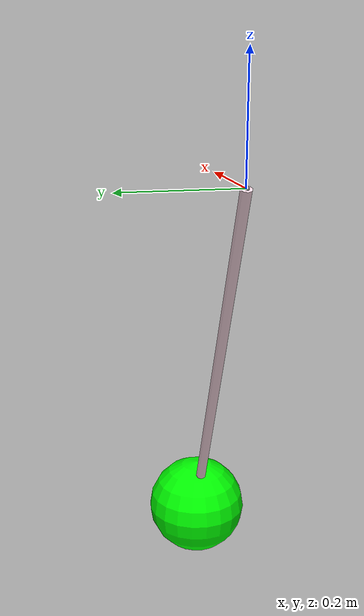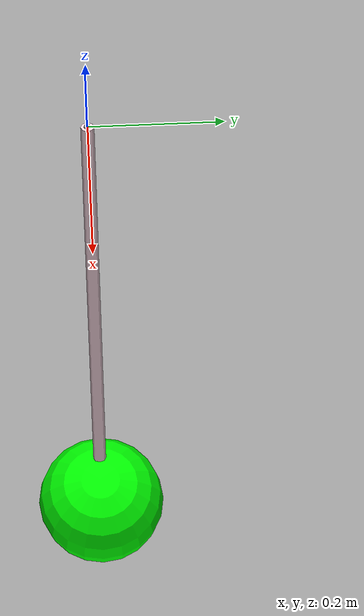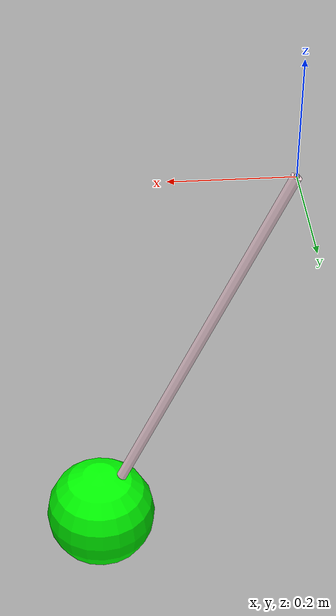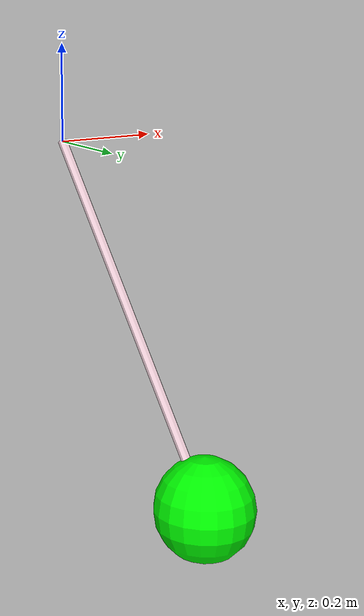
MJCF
<mujoco>
            <compiler angle="radian" autolimits="true" />
            <compiler meshdir="asset" texturedir="asset" assetdir="asset" />
            <option gravity="0 0 -9.81" />
            <default class="main">
            <geom friction="0 0 0" solimp="0.9 1 0.001 0.01 20" solref="0.02 1" condim="1" />
        </default>

        <visual>
            <headlight diffuse="0.7 0.7 0.7" ambient="0.5 0.5 0.5" />
            <global offwidth="1920" offheight="1080" />
        </visual>

        <asset>
            <texture type="skybox" builtin="gradient" rgb1="0 0.5 0.7" rgb2="0 0 0" width="512" height="512" />
            <texture type="2d" name="checks1" builtin="checker" rgb1="1 1 1" rgb2="0 0 0" width="256" height="256" />
            <material name="test_color" texture="checks1" texuniform="true" texrepeat="2 2" />
            <material name="reflectance" reflectance=".4" />
            <texture name="grid" type="2d" builtin="checker" width="512" height="512" rgb1="1.0 0.6235 0.1098" rgb2="1.0 0.749 0.4118" />
            <texture name="white-texture-background" type="2d" file="/home/aryansatpathy/DevStuff/cmu/PHO/sim/geom_sources/fixed_sources/rocket/rocket.white-texture-background.png" content_type="image/png" />
            <material name="pulley" texture="grid" texrepeat="2 2" texuniform="true" />

        </asset>
        <worldbody><body name="pendulumentity_0.sphere" pos="0.3219516284556733 0.0 -0.7214202304723234" quat="1.0 0.0 0.0 0.0"><geom name="pendulumentity_0.sphere.geom" type="sphere" pos="0 0 0" size="0.1" material="pulley" rgba="0 1 0 1" mass="2.09" quat="0 0 0 1" contype="1" conaffinity="1" />
<site name="pendulumentity_0.sphere.site" pos="0 0 0" quat="1.0 -0.0 -0.0 -0.0" />
<site name="pendulumentity_0.sphere.center_site" pos="0 0 0" quat="1.0 -0.0 -0.0 -0.0" />
<joint name="pendulumentity_0.sphere.joint" type="free" axis="0 0 0" pos="0 0 0" />
</body>
<body name="pendulumentity_0" pos="0.0 0.0 0.0" quat="1.0 0.0 0.0 0.0"><site name="pendulumentity_0.top_site" pos="0 0 0" quat="1.0 -0.0 -0.0 -0.0" />
</body>

        </worldbody><tendon>
<spatial name="pendulumentity_0.pendulum_tendon-0" width="0.01" rgba="0.9686 0.8392 0.8784 1" range="0 0.79" limited="true" solimplimit="0.99 1 0.001 0.01 20" solreflimit="0.02 1">
<site site="pendulumentity_0.sphere.site" />
<site site="pendulumentity_0.top_site" />
</spatial>
</tendon>

        <sensor>

        </sensor>
        <custom>

        </custom>
        <contact>

        </contact>
        <actuator>

        </actuator>
    </mujoco>
